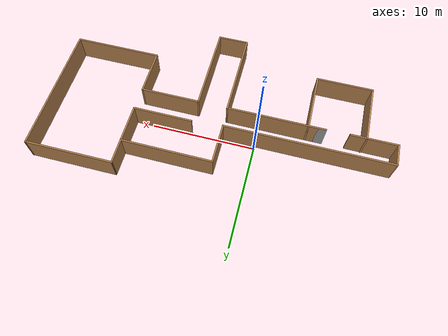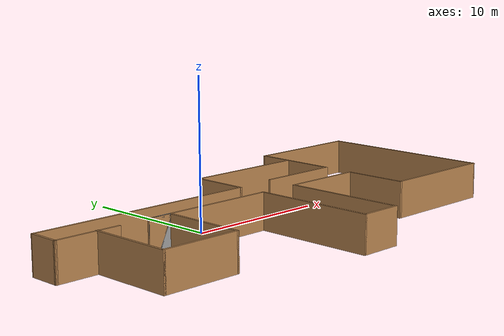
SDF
<?xml version='1.0'?>
<sdf version='1.7'>
  <model name='test'>
    <pose>3.67694 -2.37441 0 0 -0 0</pose>
    <link name='Wall_10'>
      <collision name='Wall_10_Collision'>
        <geometry>
          <box>
            <size>5.5 0.15 2.5</size>
          </box>
        </geometry>
        <pose>0 0 1.25 0 -0 0</pose>
      </collision>
      <visual name='Wall_10_Visual'>
        <pose>0 0 1.25 0 -0 0</pose>
        <geometry>
          <box>
            <size>5.5 0.15 2.5</size>
          </box>
        </geometry>
        <material>
          <script>
            <uri>file://media/materials/scripts/gazebo.material</uri>
            <name>Gazebo/Wood</name>
          </script>
          <ambient>1 1 1 1</ambient>
        </material>
        <meta>
          <layer>0</layer>
        </meta>
      </visual>
      <pose>-10.8519 -5.5502 0 0 -0 0</pose>
    </link>
    <link name='Wall_11'>
      <collision name='Wall_11_Collision'>
        <geometry>
          <box>
            <size>5.75 0.15 2.5</size>
          </box>
        </geometry>
        <pose>0 0 1.25 0 -0 0</pose>
      </collision>
      <visual name='Wall_11_Visual'>
        <pose>0 0 1.25 0 -0 0</pose>
        <geometry>
          <box>
            <size>5.75 0.15 2.5</size>
          </box>
        </geometry>
        <material>
          <script>
            <uri>file://media/materials/scripts/gazebo.material</uri>
            <name>Gazebo/Wood</name>
          </script>
          <ambient>1 1 1 1</ambient>
        </material>
        <meta>
          <layer>0</layer>
        </meta>
      </visual>
      <pose>-8.17693 -2.7502 0 0 -0 1.5708</pose>
    </link>
    <link name='Wall_12'>
      <collision name='Wall_12_Collision'>
        <geometry>
          <box>
            <size>1.75 0.15 2.5</size>
          </box>
        </geometry>
        <pose>0 0 1.25 0 -0 0</pose>
      </collision>
      <visual name='Wall_12_Visual'>
        <pose>0 0 1.25 0 -0 0</pose>
        <geometry>
          <box>
            <size>1.75 0.15 2.5</size>
          </box>
        </geometry>
        <material>
          <script>
            <uri>file://media/materials/scripts/gazebo.material</uri>
            <name>Gazebo/Grey</name>
          </script>
          <ambient>1 1 1 1</ambient>
        </material>
        <meta>
          <layer>0</layer>
        </meta>
      </visual>
      <pose>-8.97693 0.049799 0 0 -0 3.14159</pose>
    </link>
    <link name='Wall_13'>
      <collision name='Wall_13_Collision'>
        <geometry>
          <box>
            <size>9.5 0.15 2.5</size>
          </box>
        </geometry>
        <pose>0 0 1.25 0 -0 0</pose>
      </collision>
      <visual name='Wall_13_Visual'>
        <pose>0 0 1.25 0 -0 0</pose>
        <geometry>
          <box>
            <size>9.5 0.15 2.5</size>
          </box>
        </geometry>
        <material>
          <script>
            <uri>file://media/materials/scripts/gazebo.material</uri>
            <name>Gazebo/Wood</name>
          </script>
          <ambient>1 1 1 1</ambient>
        </material>
        <meta>
          <layer>0</layer>
        </meta>
      </visual>
      <pose>-5.10193 0.049799 0 0 -0 0</pose>
    </link>
    <link name='Wall_14'>
      <collision name='Wall_14_Collision'>
        <geometry>
          <box>
            <size>8.5 0.15 2.5</size>
          </box>
        </geometry>
        <pose>0 0 1.25 0 -0 0</pose>
      </collision>
      <visual name='Wall_14_Visual'>
        <pose>0 0 1.25 0 -0 0</pose>
        <geometry>
          <box>
            <size>8.5 0.15 2.5</size>
          </box>
        </geometry>
        <material>
          <script>
            <uri>file://media/materials/scripts/gazebo.material</uri>
            <name>Gazebo/Wood</name>
          </script>
          <ambient>1 1 1 1</ambient>
        </material>
        <meta>
          <layer>0</layer>
        </meta>
      </visual>
      <pose>-0.426931 -4.1252 0 0 -0 -1.5708</pose>
    </link>
    <link name='Wall_15'>
      <collision name='Wall_15_Collision'>
        <geometry>
          <box>
            <size>3 0.15 2.5</size>
          </box>
        </geometry>
        <pose>0 0 1.25 0 -0 0</pose>
      </collision>
      <visual name='Wall_15_Visual'>
        <pose>0 0 1.25 0 -0 0</pose>
        <geometry>
          <box>
            <size>3 0.15 2.5</size>
          </box>
        </geometry>
        <material>
          <script>
            <uri>file://media/materials/scripts/gazebo.material</uri>
            <name>Gazebo/Wood</name>
          </script>
          <ambient>1 1 1 1</ambient>
        </material>
        <meta>
          <layer>0</layer>
        </meta>
      </visual>
      <pose>0.998069 -8.3002 0 0 -0 0</pose>
    </link>
    <link name='Wall_16'>
      <collision name='Wall_16_Collision'>
        <geometry>
          <box>
            <size>8.5 0.15 2.5</size>
          </box>
        </geometry>
        <pose>0 0 1.25 0 -0 0</pose>
      </collision>
      <visual name='Wall_16_Visual'>
        <pose>0 0 1.25 0 -0 0</pose>
        <geometry>
          <box>
            <size>8.5 0.15 2.5</size>
          </box>
        </geometry>
        <material>
          <script>
            <uri>file://media/materials/scripts/gazebo.material</uri>
            <name>Gazebo/Wood</name>
          </script>
          <ambient>1 1 1 1</ambient>
        </material>
        <meta>
          <layer>0</layer>
        </meta>
      </visual>
      <pose>2.42307 -4.1252 0 0 -0 1.5708</pose>
    </link>
    <link name='Wall_17'>
      <collision name='Wall_17_Collision'>
        <geometry>
          <box>
            <size>5.75 0.15 2.5</size>
          </box>
        </geometry>
        <pose>0 0 1.25 0 -0 0</pose>
      </collision>
      <visual name='Wall_17_Visual'>
        <pose>0 0 1.25 0 -0 0</pose>
        <geometry>
          <box>
            <size>5.75 0.15 2.5</size>
          </box>
        </geometry>
        <material>
          <script>
            <uri>file://media/materials/scripts/gazebo.material</uri>
            <name>Gazebo/Wood</name>
          </script>
          <ambient>1 1 1 1</ambient>
        </material>
        <meta>
          <layer>0</layer>
        </meta>
      </visual>
      <pose>5.22307 0.049799 0 0 -0 0</pose>
    </link>
    <link name='Wall_19'>
      <collision name='Wall_19_Collision'>
        <geometry>
          <box>
            <size>16 0.15 2.5</size>
          </box>
        </geometry>
        <pose>0 0 1.25 0 -0 0</pose>
      </collision>
      <visual name='Wall_19_Visual'>
        <pose>0 0 1.25 0 -0 0</pose>
        <geometry>
          <box>
            <size>16 0.15 2.5</size>
          </box>
        </geometry>
        <material>
          <script>
            <uri>file://media/materials/scripts/gazebo.material</uri>
            <name>Gazebo/Wood</name>
          </script>
          <ambient>1 1 1 1</ambient>
        </material>
        <meta>
          <layer>0</layer>
        </meta>
      </visual>
      <pose>-8.4394 2.05526 0 0 -0 0</pose>
    </link>
    <link name='Wall_21'>
      <collision name='Wall_21_Collision'>
        <geometry>
          <box>
            <size>2.20868 0.15 2.5</size>
          </box>
        </geometry>
        <pose>0 0 1.25 0 -0 0</pose>
      </collision>
      <visual name='Wall_21_Visual'>
        <pose>0 0 1.25 0 -0 0</pose>
        <geometry>
          <box>
            <size>2.20868 0.15 2.5</size>
          </box>
        </geometry>
        <material>
          <script>
            <uri>file://media/materials/scripts/gazebo.material</uri>
            <name>Gazebo/Wood</name>
          </script>
          <ambient>1 1 1 1</ambient>
        </material>
        <meta>
          <layer>0</layer>
        </meta>
      </visual>
      <pose>-16.3688 1.02593 0 0 -0 1.56654</pose>
    </link>
    <link name='Wall_23'>
      <collision name='Wall_23_Collision'>
        <geometry>
          <box>
            <size>4 0.15 2.5</size>
          </box>
        </geometry>
        <pose>0 0 1.25 0 -0 0</pose>
      </collision>
      <visual name='Wall_23_Visual'>
        <pose>0 0 1.25 0 -0 0</pose>
        <geometry>
          <box>
            <size>4 0.15 2.5</size>
          </box>
        </geometry>
        <material>
          <script>
            <uri>file://media/materials/scripts/gazebo.material</uri>
            <name>Gazebo/Wood</name>
          </script>
          <ambient>1 1 1 1</ambient>
        </material>
        <meta>
          <layer>0</layer>
        </meta>
      </visual>
      <pose>-0.514398 3.98026 0 0 -0 1.5708</pose>
    </link>
    <link name='Wall_24'>
      <collision name='Wall_24_Collision'>
        <geometry>
          <box>
            <size>8.75 0.15 2.5</size>
          </box>
        </geometry>
        <pose>0 0 1.25 0 -0 0</pose>
      </collision>
      <visual name='Wall_24_Visual'>
        <pose>0 0 1.25 0 -0 0</pose>
        <geometry>
          <box>
            <size>8.75 0.15 2.5</size>
          </box>
        </geometry>
        <material>
          <script>
            <uri>file://media/materials/scripts/gazebo.material</uri>
            <name>Gazebo/Wood</name>
          </script>
          <ambient>1 1 1 1</ambient>
        </material>
        <meta>
          <layer>0</layer>
        </meta>
      </visual>
      <pose>3.7856 5.90526 0 0 -0 0</pose>
    </link>
    <link name='Wall_25'>
      <collision name='Wall_25_Collision'>
        <geometry>
          <box>
            <size>3.75 0.15 2.5</size>
          </box>
        </geometry>
        <pose>0 0 1.25 0 -0 0</pose>
      </collision>
      <visual name='Wall_25_Visual'>
        <pose>0 0 1.25 0 -0 0</pose>
        <geometry>
          <box>
            <size>3.75 0.15 2.5</size>
          </box>
        </geometry>
        <material>
          <script>
            <uri>file://media/materials/scripts/gazebo.material</uri>
            <name>Gazebo/Wood</name>
          </script>
          <ambient>1 1 1 1</ambient>
        </material>
        <meta>
          <layer>0</layer>
        </meta>
      </visual>
      <pose>8.0856 4.10526 0 0 -0 -1.5708</pose>
    </link>
    <link name='Wall_26'>
      <collision name='Wall_26_Collision'>
        <geometry>
          <box>
            <size>5.75 0.15 2.5</size>
          </box>
        </geometry>
        <pose>0 0 1.25 0 -0 0</pose>
      </collision>
      <visual name='Wall_26_Visual'>
        <pose>0 0 1.25 0 -0 0</pose>
        <geometry>
          <box>
            <size>5.75 0.15 2.5</size>
          </box>
        </geometry>
        <material>
          <script>
            <uri>file://media/materials/scripts/gazebo.material</uri>
            <name>Gazebo/Wood</name>
          </script>
          <ambient>1 1 1 1</ambient>
        </material>
        <meta>
          <layer>0</layer>
        </meta>
      </visual>
      <pose>5.2856 2.30526 0 0 -0 3.14159</pose>
    </link>
    <link name='Wall_28'>
      <collision name='Wall_28_Collision'>
        <geometry>
          <box>
            <size>4.5 0.15 2.5</size>
          </box>
        </geometry>
        <pose>0 0 1.25 0 -0 0</pose>
      </collision>
      <visual name='Wall_28_Visual'>
        <pose>0 0 1.25 0 -0 0</pose>
        <geometry>
          <box>
            <size>4.5 0.15 2.5</size>
          </box>
        </geometry>
        <material>
          <script>
            <uri>file://media/materials/scripts/gazebo.material</uri>
            <name>Gazebo/Wood</name>
          </script>
          <ambient>1 1 1 1</ambient>
        </material>
        <meta>
          <layer>0</layer>
        </meta>
      </visual>
      <pose>8.02307 -2.1252 0 0 -0 -1.5708</pose>
    </link>
    <link name='Wall_29'>
      <collision name='Wall_29_Collision'>
        <geometry>
          <box>
            <size>8.5 0.15 2.5</size>
          </box>
        </geometry>
        <pose>0 0 1.25 0 -0 0</pose>
      </collision>
      <visual name='Wall_29_Visual'>
        <pose>0 0 1.25 0 -0 0</pose>
        <geometry>
          <box>
            <size>8.5 0.15 2.5</size>
          </box>
        </geometry>
        <material>
          <script>
            <uri>file://media/materials/scripts/gazebo.material</uri>
            <name>Gazebo/Wood</name>
          </script>
          <ambient>1 1 1 1</ambient>
        </material>
        <meta>
          <layer>0</layer>
        </meta>
      </visual>
      <pose>12.1981 -4.3002 0 0 -0 0</pose>
    </link>
    <link name='Wall_30'>
      <collision name='Wall_30_Collision'>
        <geometry>
          <box>
            <size>12.75 0.15 2.5</size>
          </box>
        </geometry>
        <pose>0 0 1.25 0 -0 0</pose>
      </collision>
      <visual name='Wall_30_Visual'>
        <pose>0 0 1.25 0 -0 0</pose>
        <geometry>
          <box>
            <size>12.75 0.15 2.5</size>
          </box>
        </geometry>
        <material>
          <script>
            <uri>file://media/materials/scripts/gazebo.material</uri>
            <name>Gazebo/Wood</name>
          </script>
          <ambient>1 1 1 1</ambient>
        </material>
        <meta>
          <layer>0</layer>
        </meta>
      </visual>
      <pose>16.3731 1.9998 0 0 -0 1.5708</pose>
    </link>
    <link name='Wall_32'>
      <collision name='Wall_32_Collision'>
        <geometry>
          <box>
            <size>2.5 0.15 2.5</size>
          </box>
        </geometry>
        <pose>0 0 1.25 0 -0 0</pose>
      </collision>
      <visual name='Wall_32_Visual'>
        <pose>0 0 1.25 0 -0 0</pose>
        <geometry>
          <box>
            <size>2.5 0.15 2.5</size>
          </box>
        </geometry>
        <material>
          <script>
            <uri>file://media/materials/scripts/gazebo.material</uri>
            <name>Gazebo/Wood</name>
          </script>
          <ambient>1 1 1 1</ambient>
        </material>
        <meta>
          <layer>0</layer>
        </meta>
      </visual>
      <pose>8.0856 7.08026 0 0 -0 -1.5708</pose>
    </link>
    <link name='Wall_34'>
      <collision name='Wall_34_Collision'>
        <geometry>
          <box>
            <size>8.43759 0.15 2.5</size>
          </box>
        </geometry>
        <pose>0 0 1.25 0 -0 0</pose>
      </collision>
      <visual name='Wall_34_Visual'>
        <pose>0 0 1.25 0 -0 0</pose>
        <geometry>
          <box>
            <size>8.43759 0.15 2.5</size>
          </box>
        </geometry>
        <material>
          <script>
            <uri>file://media/materials/scripts/gazebo.material</uri>
            <name>Gazebo/Wood</name>
          </script>
          <ambient>1 1 1 1</ambient>
        </material>
        <meta>
          <layer>0</layer>
        </meta>
      </visual>
      <pose>12.2293 8.27753 0 0 -0 0.005374</pose>
    </link>
    <link name='Wall_7'>
      <collision name='Wall_7_Collision'>
        <geometry>
          <box>
            <size>4.5 0.15 2.5</size>
          </box>
        </geometry>
        <pose>0 0 1.25 0 -0 0</pose>
      </collision>
      <visual name='Wall_7_Visual'>
        <pose>0 0 1.25 0 -0 0</pose>
        <geometry>
          <box>
            <size>4.5 0.15 2.5</size>
          </box>
        </geometry>
        <material>
          <script>
            <uri>file://media/materials/scripts/gazebo.material</uri>
            <name>Gazebo/Wood</name>
          </script>
          <ambient>1 1 1 1</ambient>
        </material>
        <meta>
          <layer>0</layer>
        </meta>
      </visual>
      <pose>-14.1982 -0.003401 0 0 -0 0</pose>
    </link>
    <link name='Wall_9'>
      <collision name='Wall_9_Collision'>
        <geometry>
          <box>
            <size>5.75 0.15 2.5</size>
          </box>
        </geometry>
        <pose>0 0 1.25 0 -0 0</pose>
      </collision>
      <visual name='Wall_9_Visual'>
        <pose>0 0 1.25 0 -0 0</pose>
        <geometry>
          <box>
            <size>5.75 0.15 2.5</size>
          </box>
        </geometry>
        <material>
          <script>
            <uri>file://media/materials/scripts/gazebo.material</uri>
            <name>Gazebo/Wood</name>
          </script>
          <ambient>1 1 1 1</ambient>
        </material>
        <meta>
          <layer>0</layer>
        </meta>
      </visual>
      <pose>-13.5269 -2.7502 0 0 -0 -1.5708</pose>
    </link>
    <static>1</static>
  </model>
</sdf>
